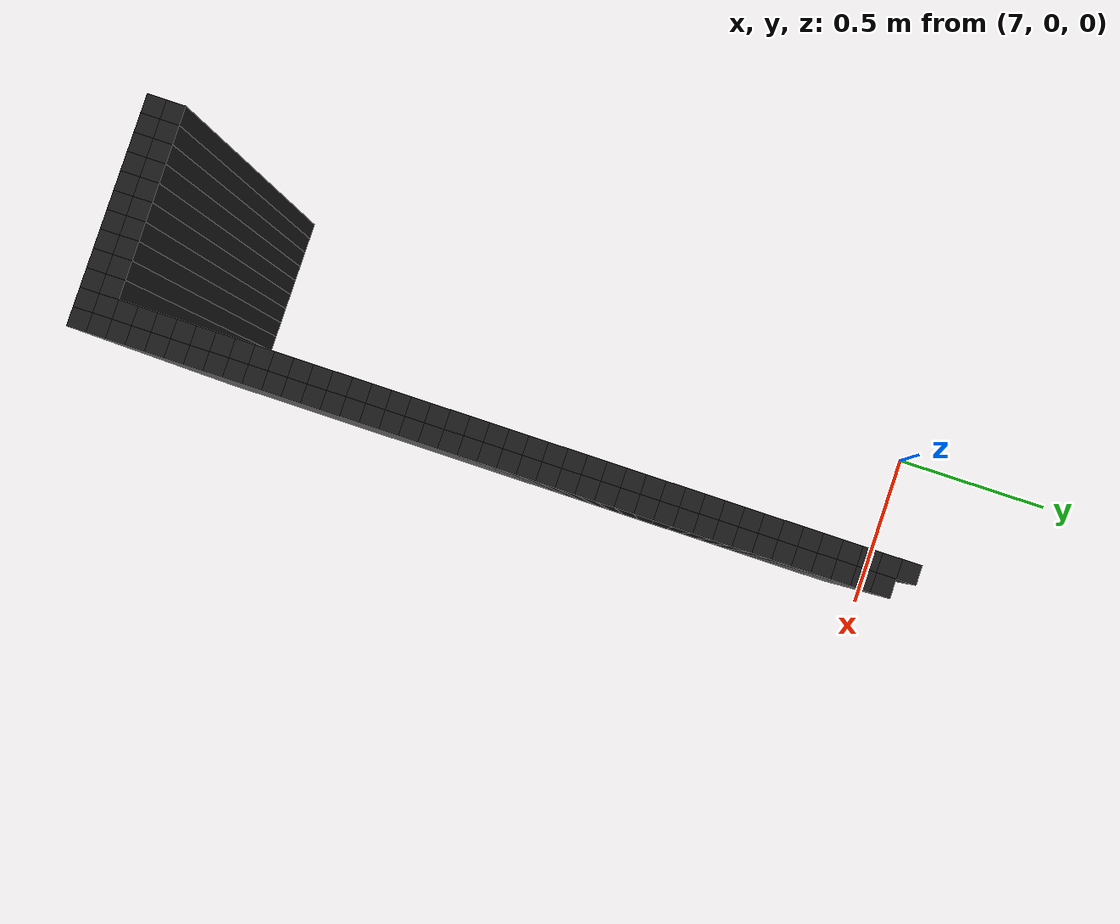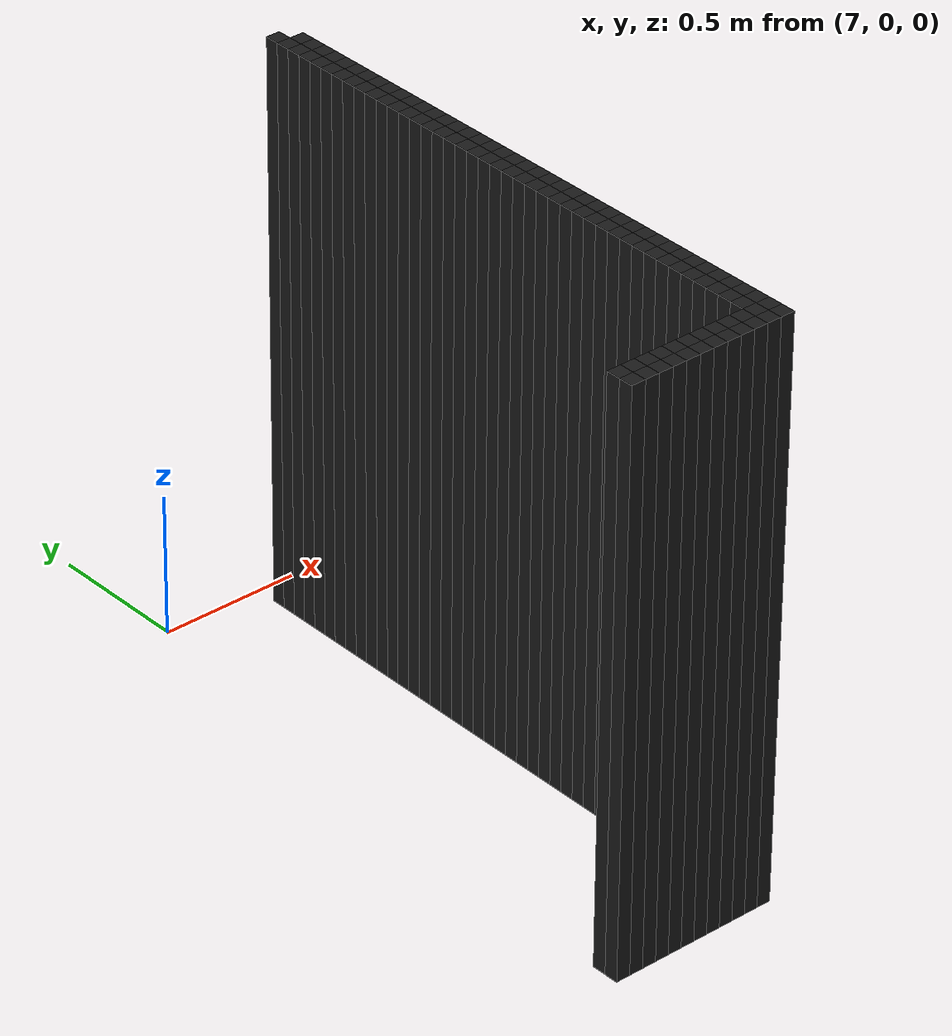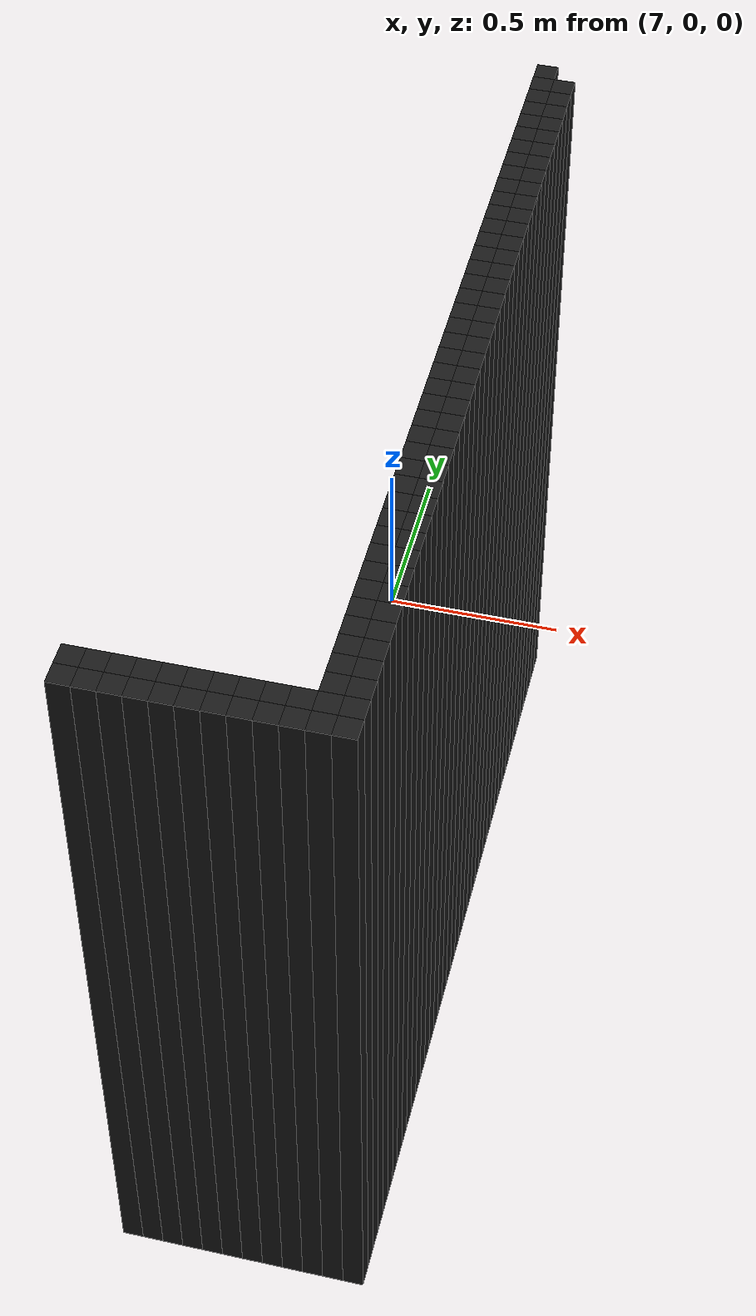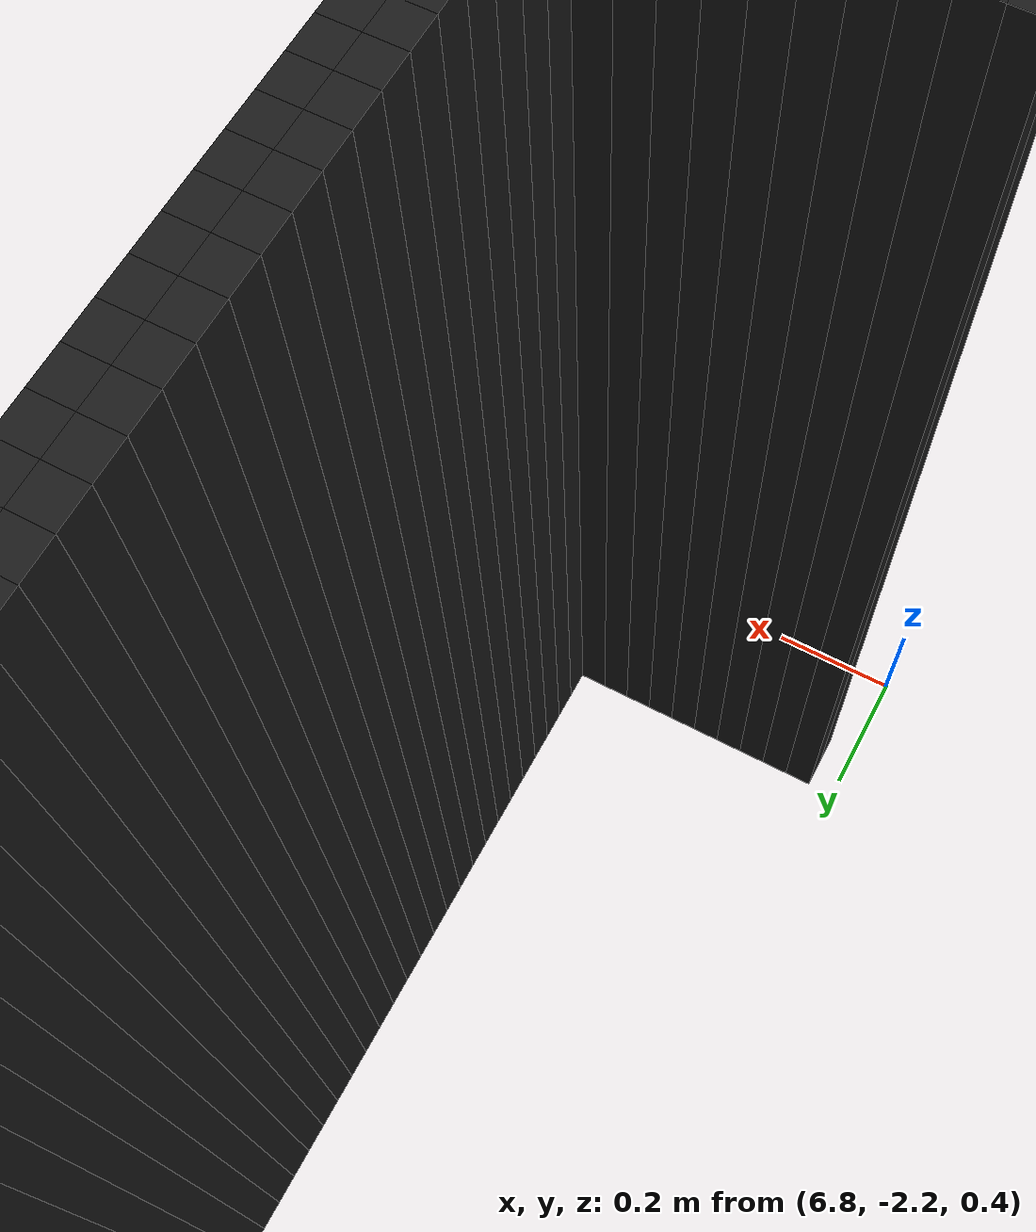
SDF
<sdf version="1.6">
 <model name="obstacle_238_169">
  <pose>7.390000000000001 -0.10000000000000009 1.0 0 0 0</pose>
  <static>true</static>
  <link name="box_link">
   <collision name="box_collision"><geometry><box><size>0.05 0.05 2.0</size></box></geometry></collision>
   <visual name="box_visual">
    <geometry><box><size>0.05 0.05 2.0</size></box></geometry>
    <material><ambient>0 0 0 1</ambient><diffuse>0.1 0.1 0.1 1</diffuse></material>
   </visual>
  </link>
 </model>
 <model name="obstacle_238_170">
  <pose>7.390000000000001 -0.1499999999999999 1.0 0 0 0</pose>
  <static>true</static>
  <link name="box_link">
   <collision name="box_collision"><geometry><box><size>0.05 0.05 2.0</size></box></geometry></collision>
   <visual name="box_visual">
    <geometry><box><size>0.05 0.05 2.0</size></box></geometry>
    <material><ambient>0 0 0 1</ambient><diffuse>0.1 0.1 0.1 1</diffuse></material>
   </visual>
  </link>
 </model>
 <model name="obstacle_239_170">
  <pose>7.440000000000001 -0.1499999999999999 1.0 0 0 0</pose>
  <static>true</static>
  <link name="box_link">
   <collision name="box_collision"><geometry><box><size>0.05 0.05 2.0</size></box></geometry></collision>
   <visual name="box_visual">
    <geometry><box><size>0.05 0.05 2.0</size></box></geometry>
    <material><ambient>0 0 0 1</ambient><diffuse>0.1 0.1 0.1 1</diffuse></material>
   </visual>
  </link>
 </model>
 <model name="obstacle_238_171">
  <pose>7.390000000000001 -0.20000000000000018 1.0 0 0 0</pose>
  <static>true</static>
  <link name="box_link">
   <collision name="box_collision"><geometry><box><size>0.05 0.05 2.0</size></box></geometry></collision>
   <visual name="box_visual">
    <geometry><box><size>0.05 0.05 2.0</size></box></geometry>
    <material><ambient>0 0 0 1</ambient><diffuse>0.1 0.1 0.1 1</diffuse></material>
   </visual>
  </link>
 </model>
 <model name="obstacle_239_171">
  <pose>7.440000000000001 -0.20000000000000018 1.0 0 0 0</pose>
  <static>true</static>
  <link name="box_link">
   <collision name="box_collision"><geometry><box><size>0.05 0.05 2.0</size></box></geometry></collision>
   <visual name="box_visual">
    <geometry><box><size>0.05 0.05 2.0</size></box></geometry>
    <material><ambient>0 0 0 1</ambient><diffuse>0.1 0.1 0.1 1</diffuse></material>
   </visual>
  </link>
 </model>
 <model name="obstacle_238_172">
  <pose>7.390000000000001 -0.25 1.0 0 0 0</pose>
  <static>true</static>
  <link name="box_link">
   <collision name="box_collision"><geometry><box><size>0.05 0.05 2.0</size></box></geometry></collision>
   <visual name="box_visual">
    <geometry><box><size>0.05 0.05 2.0</size></box></geometry>
    <material><ambient>0 0 0 1</ambient><diffuse>0.1 0.1 0.1 1</diffuse></material>
   </visual>
  </link>
 </model>
 <model name="obstacle_239_172">
  <pose>7.440000000000001 -0.25 1.0 0 0 0</pose>
  <static>true</static>
  <link name="box_link">
   <collision name="box_collision"><geometry><box><size>0.05 0.05 2.0</size></box></geometry></collision>
   <visual name="box_visual">
    <geometry><box><size>0.05 0.05 2.0</size></box></geometry>
    <material><ambient>0 0 0 1</ambient><diffuse>0.1 0.1 0.1 1</diffuse></material>
   </visual>
  </link>
 </model>
 <model name="obstacle_238_173">
  <pose>7.390000000000001 -0.30000000000000004 1.0 0 0 0</pose>
  <static>true</static>
  <link name="box_link">
   <collision name="box_collision"><geometry><box><size>0.05 0.05 2.0</size></box></geometry></collision>
   <visual name="box_visual">
    <geometry><box><size>0.05 0.05 2.0</size></box></geometry>
    <material><ambient>0 0 0 1</ambient><diffuse>0.1 0.1 0.1 1</diffuse></material>
   </visual>
  </link>
 </model>
 <model name="obstacle_239_173">
  <pose>7.440000000000001 -0.30000000000000004 1.0 0 0 0</pose>
  <static>true</static>
  <link name="box_link">
   <collision name="box_collision"><geometry><box><size>0.05 0.05 2.0</size></box></geometry></collision>
   <visual name="box_visual">
    <geometry><box><size>0.05 0.05 2.0</size></box></geometry>
    <material><ambient>0 0 0 1</ambient><diffuse>0.1 0.1 0.1 1</diffuse></material>
   </visual>
  </link>
 </model>
 <model name="obstacle_238_174">
  <pose>7.390000000000001 -0.3500000000000001 1.0 0 0 0</pose>
  <static>true</static>
  <link name="box_link">
   <collision name="box_collision"><geometry><box><size>0.05 0.05 2.0</size></box></geometry></collision>
   <visual name="box_visual">
    <geometry><box><size>0.05 0.05 2.0</size></box></geometry>
    <material><ambient>0 0 0 1</ambient><diffuse>0.1 0.1 0.1 1</diffuse></material>
   </visual>
  </link>
 </model>
 <model name="obstacle_239_174">
  <pose>7.440000000000001 -0.3500000000000001 1.0 0 0 0</pose>
  <static>true</static>
  <link name="box_link">
   <collision name="box_collision"><geometry><box><size>0.05 0.05 2.0</size></box></geometry></collision>
   <visual name="box_visual">
    <geometry><box><size>0.05 0.05 2.0</size></box></geometry>
    <material><ambient>0 0 0 1</ambient><diffuse>0.1 0.1 0.1 1</diffuse></material>
   </visual>
  </link>
 </model>
 <model name="obstacle_238_175">
  <pose>7.390000000000001 -0.40000000000000013 1.0 0 0 0</pose>
  <static>true</static>
  <link name="box_link">
   <collision name="box_collision"><geometry><box><size>0.05 0.05 2.0</size></box></geometry></collision>
   <visual name="box_visual">
    <geometry><box><size>0.05 0.05 2.0</size></box></geometry>
    <material><ambient>0 0 0 1</ambient><diffuse>0.1 0.1 0.1 1</diffuse></material>
   </visual>
  </link>
 </model>
 <model name="obstacle_239_175">
  <pose>7.440000000000001 -0.40000000000000013 1.0 0 0 0</pose>
  <static>true</static>
  <link name="box_link">
   <collision name="box_collision"><geometry><box><size>0.05 0.05 2.0</size></box></geometry></collision>
   <visual name="box_visual">
    <geometry><box><size>0.05 0.05 2.0</size></box></geometry>
    <material><ambient>0 0 0 1</ambient><diffuse>0.1 0.1 0.1 1</diffuse></material>
   </visual>
  </link>
 </model>
 <model name="obstacle_238_176">
  <pose>7.390000000000001 -0.4500000000000002 1.0 0 0 0</pose>
  <static>true</static>
  <link name="box_link">
   <collision name="box_collision"><geometry><box><size>0.05 0.05 2.0</size></box></geometry></collision>
   <visual name="box_visual">
    <geometry><box><size>0.05 0.05 2.0</size></box></geometry>
    <material><ambient>0 0 0 1</ambient><diffuse>0.1 0.1 0.1 1</diffuse></material>
   </visual>
  </link>
 </model>
 <model name="obstacle_239_176">
  <pose>7.440000000000001 -0.4500000000000002 1.0 0 0 0</pose>
  <static>true</static>
  <link name="box_link">
   <collision name="box_collision"><geometry><box><size>0.05 0.05 2.0</size></box></geometry></collision>
   <visual name="box_visual">
    <geometry><box><size>0.05 0.05 2.0</size></box></geometry>
    <material><ambient>0 0 0 1</ambient><diffuse>0.1 0.1 0.1 1</diffuse></material>
   </visual>
  </link>
 </model>
 <model name="obstacle_238_177">
  <pose>7.390000000000001 -0.5 1.0 0 0 0</pose>
  <static>true</static>
  <link name="box_link">
   <collision name="box_collision"><geometry><box><size>0.05 0.05 2.0</size></box></geometry></collision>
   <visual name="box_visual">
    <geometry><box><size>0.05 0.05 2.0</size></box></geometry>
    <material><ambient>0 0 0 1</ambient><diffuse>0.1 0.1 0.1 1</diffuse></material>
   </visual>
  </link>
 </model>
 <model name="obstacle_239_177">
  <pose>7.440000000000001 -0.5 1.0 0 0 0</pose>
  <static>true</static>
  <link name="box_link">
   <collision name="box_collision"><geometry><box><size>0.05 0.05 2.0</size></box></geometry></collision>
   <visual name="box_visual">
    <geometry><box><size>0.05 0.05 2.0</size></box></geometry>
    <material><ambient>0 0 0 1</ambient><diffuse>0.1 0.1 0.1 1</diffuse></material>
   </visual>
  </link>
 </model>
 <model name="obstacle_238_178">
  <pose>7.390000000000001 -0.55 1.0 0 0 0</pose>
  <static>true</static>
  <link name="box_link">
   <collision name="box_collision"><geometry><box><size>0.05 0.05 2.0</size></box></geometry></collision>
   <visual name="box_visual">
    <geometry><box><size>0.05 0.05 2.0</size></box></geometry>
    <material><ambient>0 0 0 1</ambient><diffuse>0.1 0.1 0.1 1</diffuse></material>
   </visual>
  </link>
 </model>
 <model name="obstacle_239_178">
  <pose>7.440000000000001 -0.55 1.0 0 0 0</pose>
  <static>true</static>
  <link name="box_link">
   <collision name="box_collision"><geometry><box><size>0.05 0.05 2.0</size></box></geometry></collision>
   <visual name="box_visual">
    <geometry><box><size>0.05 0.05 2.0</size></box></geometry>
    <material><ambient>0 0 0 1</ambient><diffuse>0.1 0.1 0.1 1</diffuse></material>
   </visual>
  </link>
 </model>
 <model name="obstacle_238_179">
  <pose>7.390000000000001 -0.6000000000000001 1.0 0 0 0</pose>
  <static>true</static>
  <link name="box_link">
   <collision name="box_collision"><geometry><box><size>0.05 0.05 2.0</size></box></geometry></collision>
   <visual name="box_visual">
    <geometry><box><size>0.05 0.05 2.0</size></box></geometry>
    <material><ambient>0 0 0 1</ambient><diffuse>0.1 0.1 0.1 1</diffuse></material>
   </visual>
  </link>
 </model>
 <model name="obstacle_239_179">
  <pose>7.440000000000001 -0.6000000000000001 1.0 0 0 0</pose>
  <static>true</static>
  <link name="box_link">
   <collision name="box_collision"><geometry><box><size>0.05 0.05 2.0</size></box></geometry></collision>
   <visual name="box_visual">
    <geometry><box><size>0.05 0.05 2.0</size></box></geometry>
    <material><ambient>0 0 0 1</ambient><diffuse>0.1 0.1 0.1 1</diffuse></material>
   </visual>
  </link>
 </model>
 <model name="obstacle_238_180">
  <pose>7.390000000000001 -0.6500000000000001 1.0 0 0 0</pose>
  <static>true</static>
  <link name="box_link">
   <collision name="box_collision"><geometry><box><size>0.05 0.05 2.0</size></box></geometry></collision>
   <visual name="box_visual">
    <geometry><box><size>0.05 0.05 2.0</size></box></geometry>
    <material><ambient>0 0 0 1</ambient><diffuse>0.1 0.1 0.1 1</diffuse></material>
   </visual>
  </link>
 </model>
 <model name="obstacle_239_180">
  <pose>7.440000000000001 -0.6500000000000001 1.0 0 0 0</pose>
  <static>true</static>
  <link name="box_link">
   <collision name="box_collision"><geometry><box><size>0.05 0.05 2.0</size></box></geometry></collision>
   <visual name="box_visual">
    <geometry><box><size>0.05 0.05 2.0</size></box></geometry>
    <material><ambient>0 0 0 1</ambient><diffuse>0.1 0.1 0.1 1</diffuse></material>
   </visual>
  </link>
 </model>
 <model name="obstacle_238_181">
  <pose>7.390000000000001 -0.7000000000000002 1.0 0 0 0</pose>
  <static>true</static>
  <link name="box_link">
   <collision name="box_collision"><geometry><box><size>0.05 0.05 2.0</size></box></geometry></collision>
   <visual name="box_visual">
    <geometry><box><size>0.05 0.05 2.0</size></box></geometry>
    <material><ambient>0 0 0 1</ambient><diffuse>0.1 0.1 0.1 1</diffuse></material>
   </visual>
  </link>
 </model>
 <model name="obstacle_239_181">
  <pose>7.440000000000001 -0.7000000000000002 1.0 0 0 0</pose>
  <static>true</static>
  <link name="box_link">
   <collision name="box_collision"><geometry><box><size>0.05 0.05 2.0</size></box></geometry></collision>
   <visual name="box_visual">
    <geometry><box><size>0.05 0.05 2.0</size></box></geometry>
    <material><ambient>0 0 0 1</ambient><diffuse>0.1 0.1 0.1 1</diffuse></material>
   </visual>
  </link>
 </model>
 <model name="obstacle_238_182">
  <pose>7.390000000000001 -0.75 1.0 0 0 0</pose>
  <static>true</static>
  <link name="box_link">
   <collision name="box_collision"><geometry><box><size>0.05 0.05 2.0</size></box></geometry></collision>
   <visual name="box_visual">
    <geometry><box><size>0.05 0.05 2.0</size></box></geometry>
    <material><ambient>0 0 0 1</ambient><diffuse>0.1 0.1 0.1 1</diffuse></material>
   </visual>
  </link>
 </model>
 <model name="obstacle_239_182">
  <pose>7.440000000000001 -0.75 1.0 0 0 0</pose>
  <static>true</static>
  <link name="box_link">
   <collision name="box_collision"><geometry><box><size>0.05 0.05 2.0</size></box></geometry></collision>
   <visual name="box_visual">
    <geometry><box><size>0.05 0.05 2.0</size></box></geometry>
    <material><ambient>0 0 0 1</ambient><diffuse>0.1 0.1 0.1 1</diffuse></material>
   </visual>
  </link>
 </model>
 <model name="obstacle_238_183">
  <pose>7.390000000000001 -0.8 1.0 0 0 0</pose>
  <static>true</static>
  <link name="box_link">
   <collision name="box_collision"><geometry><box><size>0.05 0.05 2.0</size></box></geometry></collision>
   <visual name="box_visual">
    <geometry><box><size>0.05 0.05 2.0</size></box></geometry>
    <material><ambient>0 0 0 1</ambient><diffuse>0.1 0.1 0.1 1</diffuse></material>
   </visual>
  </link>
 </model>
 <model name="obstacle_239_183">
  <pose>7.440000000000001 -0.8 1.0 0 0 0</pose>
  <static>true</static>
  <link name="box_link">
   <collision name="box_collision"><geometry><box><size>0.05 0.05 2.0</size></box></geometry></collision>
   <visual name="box_visual">
    <geometry><box><size>0.05 0.05 2.0</size></box></geometry>
    <material><ambient>0 0 0 1</ambient><diffuse>0.1 0.1 0.1 1</diffuse></material>
   </visual>
  </link>
 </model>
 <model name="obstacle_238_184">
  <pose>7.390000000000001 -0.8500000000000001 1.0 0 0 0</pose>
  <static>true</static>
  <link name="box_link">
   <collision name="box_collision"><geometry><box><size>0.05 0.05 2.0</size></box></geometry></collision>
   <visual name="box_visual">
    <geometry><box><size>0.05 0.05 2.0</size></box></geometry>
    <material><ambient>0 0 0 1</ambient><diffuse>0.1 0.1 0.1 1</diffuse></material>
   </visual>
  </link>
 </model>
 <model name="obstacle_239_184">
  <pose>7.440000000000001 -0.8500000000000001 1.0 0 0 0</pose>
  <static>true</static>
  <link name="box_link">
   <collision name="box_collision"><geometry><box><size>0.05 0.05 2.0</size></box></geometry></collision>
   <visual name="box_visual">
    <geometry><box><size>0.05 0.05 2.0</size></box></geometry>
    <material><ambient>0 0 0 1</ambient><diffuse>0.1 0.1 0.1 1</diffuse></material>
   </visual>
  </link>
 </model>
 <model name="obstacle_238_185">
  <pose>7.390000000000001 -0.9000000000000001 1.0 0 0 0</pose>
  <static>true</static>
  <link name="box_link">
   <collision name="box_collision"><geometry><box><size>0.05 0.05 2.0</size></box></geometry></collision>
   <visual name="box_visual">
    <geometry><box><size>0.05 0.05 2.0</size></box></geometry>
    <material><ambient>0 0 0 1</ambient><diffuse>0.1 0.1 0.1 1</diffuse></material>
   </visual>
  </link>
 </model>
 <model name="obstacle_239_185">
  <pose>7.440000000000001 -0.9000000000000001 1.0 0 0 0</pose>
  <static>true</static>
  <link name="box_link">
   <collision name="box_collision"><geometry><box><size>0.05 0.05 2.0</size></box></geometry></collision>
   <visual name="box_visual">
    <geometry><box><size>0.05 0.05 2.0</size></box></geometry>
    <material><ambient>0 0 0 1</ambient><diffuse>0.1 0.1 0.1 1</diffuse></material>
   </visual>
  </link>
 </model>
 <model name="obstacle_238_186">
  <pose>7.390000000000001 -0.9500000000000002 1.0 0 0 0</pose>
  <static>true</static>
  <link name="box_link">
   <collision name="box_collision"><geometry><box><size>0.05 0.05 2.0</size></box></geometry></collision>
   <visual name="box_visual">
    <geometry><box><size>0.05 0.05 2.0</size></box></geometry>
    <material><ambient>0 0 0 1</ambient><diffuse>0.1 0.1 0.1 1</diffuse></material>
   </visual>
  </link>
 </model>
 <model name="obstacle_239_186">
  <pose>7.440000000000001 -0.9500000000000002 1.0 0 0 0</pose>
  <static>true</static>
  <link name="box_link">
   <collision name="box_collision"><geometry><box><size>0.05 0.05 2.0</size></box></geometry></collision>
   <visual name="box_visual">
    <geometry><box><size>0.05 0.05 2.0</size></box></geometry>
    <material><ambient>0 0 0 1</ambient><diffuse>0.1 0.1 0.1 1</diffuse></material>
   </visual>
  </link>
 </model>
 <model name="obstacle_238_187">
  <pose>7.390000000000001 -1.0 1.0 0 0 0</pose>
  <static>true</static>
  <link name="box_link">
   <collision name="box_collision"><geometry><box><size>0.05 0.05 2.0</size></box></geometry></collision>
   <visual name="box_visual">
    <geometry><box><size>0.05 0.05 2.0</size></box></geometry>
    <material><ambient>0 0 0 1</ambient><diffuse>0.1 0.1 0.1 1</diffuse></material>
   </visual>
  </link>
 </model>
 <model name="obstacle_239_187">
  <pose>7.440000000000001 -1.0 1.0 0 0 0</pose>
  <static>true</static>
  <link name="box_link">
   <collision name="box_collision"><geometry><box><size>0.05 0.05 2.0</size></box></geometry></collision>
   <visual name="box_visual">
    <geometry><box><size>0.05 0.05 2.0</size></box></geometry>
    <material><ambient>0 0 0 1</ambient><diffuse>0.1 0.1 0.1 1</diffuse></material>
   </visual>
  </link>
 </model>
 <model name="obstacle_238_188">
  <pose>7.390000000000001 -1.05 1.0 0 0 0</pose>
  <static>true</static>
  <link name="box_link">
   <collision name="box_collision"><geometry><box><size>0.05 0.05 2.0</size></box></geometry></collision>
   <visual name="box_visual">
    <geometry><box><size>0.05 0.05 2.0</size></box></geometry>
    <material><ambient>0 0 0 1</ambient><diffuse>0.1 0.1 0.1 1</diffuse></material>
   </visual>
  </link>
 </model>
 <model name="obstacle_239_188">
  <pose>7.440000000000001 -1.05 1.0 0 0 0</pose>
  <static>true</static>
  <link name="box_link">
   <collision name="box_collision"><geometry><box><size>0.05 0.05 2.0</size></box></geometry></collision>
   <visual name="box_visual">
    <geometry><box><size>0.05 0.05 2.0</size></box></geometry>
    <material><ambient>0 0 0 1</ambient><diffuse>0.1 0.1 0.1 1</diffuse></material>
   </visual>
  </link>
 </model>
 <model name="obstacle_238_189">
  <pose>7.390000000000001 -1.1 1.0 0 0 0</pose>
  <static>true</static>
  <link name="box_link">
   <collision name="box_collision"><geometry><box><size>0.05 0.05 2.0</size></box></geometry></collision>
   <visual name="box_visual">
    <geometry><box><size>0.05 0.05 2.0</size></box></geometry>
    <material><ambient>0 0 0 1</ambient><diffuse>0.1 0.1 0.1 1</diffuse></material>
   </visual>
  </link>
 </model>
 <model name="obstacle_239_189">
  <pose>7.440000000000001 -1.1 1.0 0 0 0</pose>
  <static>true</static>
  <link name="box_link">
   <collision name="box_collision"><geometry><box><size>0.05 0.05 2.0</size></box></geometry></collision>
   <visual name="box_visual">
    <geometry><box><size>0.05 0.05 2.0</size></box></geometry>
    <material><ambient>0 0 0 1</ambient><diffuse>0.1 0.1 0.1 1</diffuse></material>
   </visual>
  </link>
 </model>
 <model name="obstacle_238_190">
  <pose>7.390000000000001 -1.1500000000000001 1.0 0 0 0</pose>
  <static>true</static>
  <link name="box_link">
   <collision name="box_collision"><geometry><box><size>0.05 0.05 2.0</size></box></geometry></collision>
   <visual name="box_visual">
    <geometry><box><size>0.05 0.05 2.0</size></box></geometry>
    <material><ambient>0 0 0 1</ambient><diffuse>0.1 0.1 0.1 1</diffuse></material>
   </visual>
  </link>
 </model>
 <model name="obstacle_239_190">
  <pose>7.440000000000001 -1.1500000000000001 1.0 0 0 0</pose>
  <static>true</static>
  <link name="box_link">
   <collision name="box_collision"><geometry><box><size>0.05 0.05 2.0</size></box></geometry></collision>
   <visual name="box_visual">
    <geometry><box><size>0.05 0.05 2.0</size></box></geometry>
    <material><ambient>0 0 0 1</ambient><diffuse>0.1 0.1 0.1 1</diffuse></material>
   </visual>
  </link>
 </model>
 <model name="obstacle_238_191">
  <pose>7.390000000000001 -1.2000000000000002 1.0 0 0 0</pose>
  <static>true</static>
  <link name="box_link">
   <collision name="box_collision"><geometry><box><size>0.05 0.05 2.0</size></box></geometry></collision>
   <visual name="box_visual">
    <geometry><box><size>0.05 0.05 2.0</size></box></geometry>
    <material><ambient>0 0 0 1</ambient><diffuse>0.1 0.1 0.1 1</diffuse></material>
   </visual>
  </link>
 </model>
 <model name="obstacle_239_191">
  <pose>7.440000000000001 -1.2000000000000002 1.0 0 0 0</pose>
  <static>true</static>
  <link name="box_link">
   <collision name="box_collision"><geometry><box><size>0.05 0.05 2.0</size></box></geometry></collision>
   <visual name="box_visual">
    <geometry><box><size>0.05 0.05 2.0</size></box></geometry>
    <material><ambient>0 0 0 1</ambient><diffuse>0.1 0.1 0.1 1</diffuse></material>
   </visual>
  </link>
 </model>
 <model name="obstacle_238_192">
  <pose>7.390000000000001 -1.25 1.0 0 0 0</pose>
  <static>true</static>
  <link name="box_link">
   <collision name="box_collision"><geometry><box><size>0.05 0.05 2.0</size></box></geometry></collision>
   <visual name="box_visual">
    <geometry><box><size>0.05 0.05 2.0</size></box></geometry>
    <material><ambient>0 0 0 1</ambient><diffuse>0.1 0.1 0.1 1</diffuse></material>
   </visual>
  </link>
 </model>
 <model name="obstacle_239_192">
  <pose>7.440000000000001 -1.25 1.0 0 0 0</pose>
  <static>true</static>
  <link name="box_link">
   <collision name="box_collision"><geometry><box><size>0.05 0.05 2.0</size></box></geometry></collision>
   <visual name="box_visual">
    <geometry><box><size>0.05 0.05 2.0</size></box></geometry>
    <material><ambient>0 0 0 1</ambient><diffuse>0.1 0.1 0.1 1</diffuse></material>
   </visual>
  </link>
 </model>
 <model name="obstacle_238_193">
  <pose>7.390000000000001 -1.3000000000000003 1.0 0 0 0</pose>
  <static>true</static>
  <link name="box_link">
   <collision name="box_collision"><geometry><box><size>0.05 0.05 2.0</size></box></geometry></collision>
   <visual name="box_visual">
    <geometry><box><size>0.05 0.05 2.0</size></box></geometry>
    <material><ambient>0 0 0 1</ambient><diffuse>0.1 0.1 0.1 1</diffuse></material>
   </visual>
  </link>
 </model>
 <model name="obstacle_239_193">
  <pose>7.440000000000001 -1.3000000000000003 1.0 0 0 0</pose>
  <static>true</static>
  <link name="box_link">
   <collision name="box_collision"><geometry><box><size>0.05 0.05 2.0</size></box></geometry></collision>
   <visual name="box_visual">
    <geometry><box><size>0.05 0.05 2.0</size></box></geometry>
    <material><ambient>0 0 0 1</ambient><diffuse>0.1 0.1 0.1 1</diffuse></material>
   </visual>
  </link>
 </model>
 <model name="obstacle_238_194">
  <pose>7.390000000000001 -1.35 1.0 0 0 0</pose>
  <static>true</static>
  <link name="box_link">
   <collision name="box_collision"><geometry><box><size>0.05 0.05 2.0</size></box></geometry></collision>
   <visual name="box_visual">
    <geometry><box><size>0.05 0.05 2.0</size></box></geometry>
    <material><ambient>0 0 0 1</ambient><diffuse>0.1 0.1 0.1 1</diffuse></material>
   </visual>
  </link>
 </model>
 <model name="obstacle_239_194">
  <pose>7.440000000000001 -1.35 1.0 0 0 0</pose>
  <static>true</static>
  <link name="box_link">
   <collision name="box_collision"><geometry><box><size>0.05 0.05 2.0</size></box></geometry></collision>
   <visual name="box_visual">
    <geometry><box><size>0.05 0.05 2.0</size></box></geometry>
    <material><ambient>0 0 0 1</ambient><diffuse>0.1 0.1 0.1 1</diffuse></material>
   </visual>
  </link>
 </model>
 <model name="obstacle_238_195">
  <pose>7.390000000000001 -1.4000000000000001 1.0 0 0 0</pose>
  <static>true</static>
  <link name="box_link">
   <collision name="box_collision"><geometry><box><size>0.05 0.05 2.0</size></box></geometry></collision>
   <visual name="box_visual">
    <geometry><box><size>0.05 0.05 2.0</size></box></geometry>
    <material><ambient>0 0 0 1</ambient><diffuse>0.1 0.1 0.1 1</diffuse></material>
   </visual>
  </link>
 </model>
 <model name="obstacle_239_195">
  <pose>7.440000000000001 -1.4000000000000001 1.0 0 0 0</pose>
  <static>true</static>
  <link name="box_link">
   <collision name="box_collision"><geometry><box><size>0.05 0.05 2.0</size></box></geometry></collision>
   <visual name="box_visual">
    <geometry><box><size>0.05 0.05 2.0</size></box></geometry>
    <material><ambient>0 0 0 1</ambient><diffuse>0.1 0.1 0.1 1</diffuse></material>
   </visual>
  </link>
 </model>
 <model name="obstacle_238_196">
  <pose>7.390000000000001 -1.4500000000000002 1.0 0 0 0</pose>
  <static>true</static>
  <link name="box_link">
   <collision name="box_collision"><geometry><box><size>0.05 0.05 2.0</size></box></geometry></collision>
   <visual name="box_visual">
    <geometry><box><size>0.05 0.05 2.0</size></box></geometry>
    <material><ambient>0 0 0 1</ambient><diffuse>0.1 0.1 0.1 1</diffuse></material>
   </visual>
  </link>
 </model>
 <model name="obstacle_239_196">
  <pose>7.440000000000001 -1.4500000000000002 1.0 0 0 0</pose>
  <static>true</static>
  <link name="box_link">
   <collision name="box_collision"><geometry><box><size>0.05 0.05 2.0</size></box></geometry></collision>
   <visual name="box_visual">
    <geometry><box><size>0.05 0.05 2.0</size></box></geometry>
    <material><ambient>0 0 0 1</ambient><diffuse>0.1 0.1 0.1 1</diffuse></material>
   </visual>
  </link>
 </model>
 <model name="obstacle_238_197">
  <pose>7.390000000000001 -1.5 1.0 0 0 0</pose>
  <static>true</static>
  <link name="box_link">
   <collision name="box_collision"><geometry><box><size>0.05 0.05 2.0</size></box></geometry></collision>
   <visual name="box_visual">
    <geometry><box><size>0.05 0.05 2.0</size></box></geometry>
    <material><ambient>0 0 0 1</ambient><diffuse>0.1 0.1 0.1 1</diffuse></material>
   </visual>
  </link>
 </model>
 <model name="obstacle_239_197">
  <pose>7.440000000000001 -1.5 1.0 0 0 0</pose>
  <static>true</static>
  <link name="box_link">
   <collision name="box_collision"><geometry><box><size>0.05 0.05 2.0</size></box></geometry></collision>
   <visual name="box_visual">
    <geometry><box><size>0.05 0.05 2.0</size></box></geometry>
    <material><ambient>0 0 0 1</ambient><diffuse>0.1 0.1 0.1 1</diffuse></material>
   </visual>
  </link>
 </model>
 <model name="obstacle_238_198">
  <pose>7.390000000000001 -1.5500000000000003 1.0 0 0 0</pose>
  <static>true</static>
  <link name="box_link">
   <collision name="box_collision"><geometry><box><size>0.05 0.05 2.0</size></box></geometry></collision>
   <visual name="box_visual">
    <geometry><box><size>0.05 0.05 2.0</size></box></geometry>
    <material><ambient>0 0 0 1</ambient><diffuse>0.1 0.1 0.1 1</diffuse></material>
   </visual>
  </link>
 </model>
 <model name="obstacle_239_198">
  <pose>7.440000000000001 -1.5500000000000003 1.0 0 0 0</pose>
  <static>true</static>
  <link name="box_link">
   <collision name="box_collision"><geometry><box><size>0.05 0.05 2.0</size></box></geometry></collision>
   <visual name="box_visual">
    <geometry><box><size>0.05 0.05 2.0</size></box></geometry>
    <material><ambient>0 0 0 1</ambient><diffuse>0.1 0.1 0.1 1</diffuse></material>
   </visual>
  </link>
 </model>
 <model name="obstacle_238_199">
  <pose>7.390000000000001 -1.6 1.0 0 0 0</pose>
  <static>true</static>
  <link name="box_link">
   <collision name="box_collision"><geometry><box><size>0.05 0.05 2.0</size></box></geometry></collision>
   <visual name="box_visual">
    <geometry><box><size>0.05 0.05 2.0</size></box></geometry>
    <material><ambient>0 0 0 1</ambient><diffuse>0.1 0.1 0.1 1</diffuse></material>
   </visual>
  </link>
 </model>
 <model name="obstacle_239_199">
  <pose>7.440000000000001 -1.6 1.0 0 0 0</pose>
  <static>true</static>
  <link name="box_link">
   <collision name="box_collision"><geometry><box><size>0.05 0.05 2.0</size></box></geometry></collision>
   <visual name="box_visual">
    <geometry><box><size>0.05 0.05 2.0</size></box></geometry>
    <material><ambient>0 0 0 1</ambient><diffuse>0.1 0.1 0.1 1</diffuse></material>
   </visual>
  </link>
 </model>
 <model name="obstacle_238_200">
  <pose>7.390000000000001 -1.6500000000000001 1.0 0 0 0</pose>
  <static>true</static>
  <link name="box_link">
   <collision name="box_collision"><geometry><box><size>0.05 0.05 2.0</size></box></geometry></collision>
   <visual name="box_visual">
    <geometry><box><size>0.05 0.05 2.0</size></box></geometry>
    <material><ambient>0 0 0 1</ambient><diffuse>0.1 0.1 0.1 1</diffuse></material>
   </visual>
  </link>
 </model>
 <model name="obstacle_239_200">
  <pose>7.440000000000001 -1.6500000000000001 1.0 0 0 0</pose>
  <static>true</static>
  <link name="box_link">
   <collision name="box_collision"><geometry><box><size>0.05 0.05 2.0</size></box></geometry></collision>
   <visual name="box_visual">
    <geometry><box><size>0.05 0.05 2.0</size></box></geometry>
    <material><ambient>0 0 0 1</ambient><diffuse>0.1 0.1 0.1 1</diffuse></material>
   </visual>
  </link>
 </model>
 <model name="obstacle_238_201">
  <pose>7.390000000000001 -1.7000000000000002 1.0 0 0 0</pose>
  <static>true</static>
  <link name="box_link">
   <collision name="box_collision"><geometry><box><size>0.05 0.05 2.0</size></box></geometry></collision>
   <visual name="box_visual">
    <geometry><box><size>0.05 0.05 2.0</size></box></geometry>
    <material><ambient>0 0 0 1</ambient><diffuse>0.1 0.1 0.1 1</diffuse></material>
   </visual>
  </link>
 </model>
 <model name="obstacle_239_201">
  <pose>7.440000000000001 -1.7000000000000002 1.0 0 0 0</pose>
  <static>true</static>
  <link name="box_link">
   <collision name="box_collision"><geometry><box><size>0.05 0.05 2.0</size></box></geometry></collision>
   <visual name="box_visual">
    <geometry><box><size>0.05 0.05 2.0</size></box></geometry>
    <material><ambient>0 0 0 1</ambient><diffuse>0.1 0.1 0.1 1</diffuse></material>
   </visual>
  </link>
 </model>
 <model name="obstacle_238_202">
  <pose>7.390000000000001 -1.7500000000000002 1.0 0 0 0</pose>
  <static>true</static>
  <link name="box_link">
   <collision name="box_collision"><geometry><box><size>0.05 0.05 2.0</size></box></geometry></collision>
   <visual name="box_visual">
    <geometry><box><size>0.05 0.05 2.0</size></box></geometry>
    <material><ambient>0 0 0 1</ambient><diffuse>0.1 0.1 0.1 1</diffuse></material>
   </visual>
  </link>
 </model>
 <model name="obstacle_239_202">
  <pose>7.440000000000001 -1.7500000000000002 1.0 0 0 0</pose>
  <static>true</static>
  <link name="box_link">
   <collision name="box_collision"><geometry><box><size>0.05 0.05 2.0</size></box></geometry></collision>
   <visual name="box_visual">
    <geometry><box><size>0.05 0.05 2.0</size></box></geometry>
    <material><ambient>0 0 0 1</ambient><diffuse>0.1 0.1 0.1 1</diffuse></material>
   </visual>
  </link>
 </model>
 <model name="obstacle_238_203">
  <pose>7.390000000000001 -1.8000000000000003 1.0 0 0 0</pose>
  <static>true</static>
  <link name="box_link">
   <collision name="box_collision"><geometry><box><size>0.05 0.05 2.0</size></box></geometry></collision>
   <visual name="box_visual">
    <geometry><box><size>0.05 0.05 2.0</size></box></geometry>
    <material><ambient>0 0 0 1</ambient><diffuse>0.1 0.1 0.1 1</diffuse></material>
   </visual>
  </link>
 </model>
 <model name="obstacle_239_203">
  <pose>7.440000000000001 -1.8000000000000003 1.0 0 0 0</pose>
  <static>true</static>
  <link name="box_link">
   <collision name="box_collision"><geometry><box><size>0.05 0.05 2.0</size></box></geometry></collision>
   <visual name="box_visual">
    <geometry><box><size>0.05 0.05 2.0</size></box></geometry>
    <material><ambient>0 0 0 1</ambient><diffuse>0.1 0.1 0.1 1</diffuse></material>
   </visual>
  </link>
 </model>
 <model name="obstacle_238_204">
  <pose>7.390000000000001 -1.85 1.0 0 0 0</pose>
  <static>true</static>
  <link name="box_link">
   <collision name="box_collision"><geometry><box><size>0.05 0.05 2.0</size></box></geometry></collision>
   <visual name="box_visual">
    <geometry><box><size>0.05 0.05 2.0</size></box></geometry>
    <material><ambient>0 0 0 1</ambient><diffuse>0.1 0.1 0.1 1</diffuse></material>
   </visual>
  </link>
 </model>
 <model name="obstacle_239_204">
  <pose>7.440000000000001 -1.85 1.0 0 0 0</pose>
  <static>true</static>
  <link name="box_link">
   <collision name="box_collision"><geometry><box><size>0.05 0.05 2.0</size></box></geometry></collision>
   <visual name="box_visual">
    <geometry><box><size>0.05 0.05 2.0</size></box></geometry>
    <material><ambient>0 0 0 1</ambient><diffuse>0.1 0.1 0.1 1</diffuse></material>
   </visual>
  </link>
 </model>
 <model name="obstacle_238_205">
  <pose>7.390000000000001 -1.9000000000000001 1.0 0 0 0</pose>
  <static>true</static>
  <link name="box_link">
   <collision name="box_collision"><geometry><box><size>0.05 0.05 2.0</size></box></geometry></collision>
   <visual name="box_visual">
    <geometry><box><size>0.05 0.05 2.0</size></box></geometry>
    <material><ambient>0 0 0 1</ambient><diffuse>0.1 0.1 0.1 1</diffuse></material>
   </visual>
  </link>
 </model>
 <model name="obstacle_239_205">
  <pose>7.440000000000001 -1.9000000000000001 1.0 0 0 0</pose>
  <static>true</static>
  <link name="box_link">
   <collision name="box_collision"><geometry><box><size>0.05 0.05 2.0</size></box></geometry></collision>
   <visual name="box_visual">
    <geometry><box><size>0.05 0.05 2.0</size></box></geometry>
    <material><ambient>0 0 0 1</ambient><diffuse>0.1 0.1 0.1 1</diffuse></material>
   </visual>
  </link>
 </model>
 <model name="obstacle_238_206">
  <pose>7.390000000000001 -1.9500000000000002 1.0 0 0 0</pose>
  <static>true</static>
  <link name="box_link">
   <collision name="box_collision"><geometry><box><size>0.05 0.05 2.0</size></box></geometry></collision>
   <visual name="box_visual">
    <geometry><box><size>0.05 0.05 2.0</size></box></geometry>
    <material><ambient>0 0 0 1</ambient><diffuse>0.1 0.1 0.1 1</diffuse></material>
   </visual>
  </link>
 </model>
 <model name="obstacle_239_206">
  <pose>7.440000000000001 -1.9500000000000002 1.0 0 0 0</pose>
  <static>true</static>
  <link name="box_link">
   <collision name="box_collision"><geometry><box><size>0.05 0.05 2.0</size></box></geometry></collision>
   <visual name="box_visual">
    <geometry><box><size>0.05 0.05 2.0</size></box></geometry>
    <material><ambient>0 0 0 1</ambient><diffuse>0.1 0.1 0.1 1</diffuse></material>
   </visual>
  </link>
 </model>
 <model name="obstacle_238_207">
  <pose>7.390000000000001 -2.0 1.0 0 0 0</pose>
  <static>true</static>
  <link name="box_link">
   <collision name="box_collision"><geometry><box><size>0.05 0.05 2.0</size></box></geometry></collision>
   <visual name="box_visual">
    <geometry><box><size>0.05 0.05 2.0</size></box></geometry>
    <material><ambient>0 0 0 1</ambient><diffuse>0.1 0.1 0.1 1</diffuse></material>
   </visual>
  </link>
 </model>
 <model name="obstacle_239_207">
  <pose>7.440000000000001 -2.0 1.0 0 0 0</pose>
  <static>true</static>
  <link name="box_link">
   <collision name="box_collision"><geometry><box><size>0.05 0.05 2.0</size></box></geometry></collision>
   <visual name="box_visual">
    <geometry><box><size>0.05 0.05 2.0</size></box></geometry>
    <material><ambient>0 0 0 1</ambient><diffuse>0.1 0.1 0.1 1</diffuse></material>
   </visual>
  </link>
 </model>
 <model name="obstacle_238_208">
  <pose>7.390000000000001 -2.0500000000000003 1.0 0 0 0</pose>
  <static>true</static>
  <link name="box_link">
   <collision name="box_collision"><geometry><box><size>0.05 0.05 2.0</size></box></geometry></collision>
   <visual name="box_visual">
    <geometry><box><size>0.05 0.05 2.0</size></box></geometry>
    <material><ambient>0 0 0 1</ambient><diffuse>0.1 0.1 0.1 1</diffuse></material>
   </visual>
  </link>
 </model>
 <model name="obstacle_239_208">
  <pose>7.440000000000001 -2.0500000000000003 1.0 0 0 0</pose>
  <static>true</static>
  <link name="box_link">
   <collision name="box_collision"><geometry><box><size>0.05 0.05 2.0</size></box></geometry></collision>
   <visual name="box_visual">
    <geometry><box><size>0.05 0.05 2.0</size></box></geometry>
    <material><ambient>0 0 0 1</ambient><diffuse>0.1 0.1 0.1 1</diffuse></material>
   </visual>
  </link>
 </model>
 <model name="obstacle_238_209">
  <pose>7.390000000000001 -2.1 1.0 0 0 0</pose>
  <static>true</static>
  <link name="box_link">
   <collision name="box_collision"><geometry><box><size>0.05 0.05 2.0</size></box></geometry></collision>
   <visual name="box_visual">
    <geometry><box><size>0.05 0.05 2.0</size></box></geometry>
    <material><ambient>0 0 0 1</ambient><diffuse>0.1 0.1 0.1 1</diffuse></material>
   </visual>
  </link>
 </model>
 <model name="obstacle_239_209">
  <pose>7.440000000000001 -2.1 1.0 0 0 0</pose>
  <static>true</static>
  <link name="box_link">
   <collision name="box_collision"><geometry><box><size>0.05 0.05 2.0</size></box></geometry></collision>
   <visual name="box_visual">
    <geometry><box><size>0.05 0.05 2.0</size></box></geometry>
    <material><ambient>0 0 0 1</ambient><diffuse>0.1 0.1 0.1 1</diffuse></material>
   </visual>
  </link>
 </model>
 <model name="obstacle_228_210">
  <pose>6.890000000000001 -2.1500000000000004 1.0 0 0 0</pose>
  <static>true</static>
  <link name="box_link">
   <collision name="box_collision"><geometry><box><size>0.05 0.05 2.0</size></box></geometry></collision>
   <visual name="box_visual">
    <geometry><box><size>0.05 0.05 2.0</size></box></geometry>
    <material><ambient>0 0 0 1</ambient><diffuse>0.1 0.1 0.1 1</diffuse></material>
   </visual>
  </link>
 </model>
 <model name="obstacle_229_210">
  <pose>6.940000000000001 -2.1500000000000004 1.0 0 0 0</pose>
  <static>true</static>
  <link name="box_link">
   <collision name="box_collision"><geometry><box><size>0.05 0.05 2.0</size></box></geometry></collision>
   <visual name="box_visual">
    <geometry><box><size>0.05 0.05 2.0</size></box></geometry>
    <material><ambient>0 0 0 1</ambient><diffuse>0.1 0.1 0.1 1</diffuse></material>
   </visual>
  </link>
 </model>
 <model name="obstacle_230_210">
  <pose>6.99 -2.1500000000000004 1.0 0 0 0</pose>
  <static>true</static>
  <link name="box_link">
   <collision name="box_collision"><geometry><box><size>0.05 0.05 2.0</size></box></geometry></collision>
   <visual name="box_visual">
    <geometry><box><size>0.05 0.05 2.0</size></box></geometry>
    <material><ambient>0 0 0 1</ambient><diffuse>0.1 0.1 0.1 1</diffuse></material>
   </visual>
  </link>
 </model>
 <model name="obstacle_231_210">
  <pose>7.040000000000001 -2.1500000000000004 1.0 0 0 0</pose>
  <static>true</static>
  <link name="box_link">
   <collision name="box_collision"><geometry><box><size>0.05 0.05 2.0</size></box></geometry></collision>
   <visual name="box_visual">
    <geometry><box><size>0.05 0.05 2.0</size></box></geometry>
    <material><ambient>0 0 0 1</ambient><diffuse>0.1 0.1 0.1 1</diffuse></material>
   </visual>
  </link>
 </model>
 <model name="obstacle_232_210">
  <pose>7.090000000000002 -2.1500000000000004 1.0 0 0 0</pose>
  <static>true</static>
  <link name="box_link">
   <collision name="box_collision"><geometry><box><size>0.05 0.05 2.0</size></box></geometry></collision>
   <visual name="box_visual">
    <geometry><box><size>0.05 0.05 2.0</size></box></geometry>
    <material><ambient>0 0 0 1</ambient><diffuse>0.1 0.1 0.1 1</diffuse></material>
   </visual>
  </link>
 </model>
 <model name="obstacle_233_210">
  <pose>7.140000000000001 -2.1500000000000004 1.0 0 0 0</pose>
  <static>true</static>
  <link name="box_link">
   <collision name="box_collision"><geometry><box><size>0.05 0.05 2.0</size></box></geometry></collision>
   <visual name="box_visual">
    <geometry><box><size>0.05 0.05 2.0</size></box></geometry>
    <material><ambient>0 0 0 1</ambient><diffuse>0.1 0.1 0.1 1</diffuse></material>
   </visual>
  </link>
 </model>
 <model name="obstacle_234_210">
  <pose>7.190000000000001 -2.1500000000000004 1.0 0 0 0</pose>
  <static>true</static>
  <link name="box_link">
   <collision name="box_collision"><geometry><box><size>0.05 0.05 2.0</size></box></geometry></collision>
   <visual name="box_visual">
    <geometry><box><size>0.05 0.05 2.0</size></box></geometry>
    <material><ambient>0 0 0 1</ambient><diffuse>0.1 0.1 0.1 1</diffuse></material>
   </visual>
  </link>
 </model>
 <model name="obstacle_235_210">
  <pose>7.24 -2.1500000000000004 1.0 0 0 0</pose>
  <static>true</static>
  <link name="box_link">
   <collision name="box_collision"><geometry><box><size>0.05 0.05 2.0</size></box></geometry></collision>
   <visual name="box_visual">
    <geometry><box><size>0.05 0.05 2.0</size></box></geometry>
    <material><ambient>0 0 0 1</ambient><diffuse>0.1 0.1 0.1 1</diffuse></material>
   </visual>
  </link>
 </model>
 <model name="obstacle_236_210">
  <pose>7.290000000000001 -2.1500000000000004 1.0 0 0 0</pose>
  <static>true</static>
  <link name="box_link">
   <collision name="box_collision"><geometry><box><size>0.05 0.05 2.0</size></box></geometry></collision>
   <visual name="box_visual">
    <geometry><box><size>0.05 0.05 2.0</size></box></geometry>
    <material><ambient>0 0 0 1</ambient><diffuse>0.1 0.1 0.1 1</diffuse></material>
   </visual>
  </link>
 </model>
 <model name="obstacle_237_210">
  <pose>7.340000000000002 -2.1500000000000004 1.0 0 0 0</pose>
  <static>true</static>
  <link name="box_link">
   <collision name="box_collision"><geometry><box><size>0.05 0.05 2.0</size></box></geometry></collision>
   <visual name="box_visual">
    <geometry><box><size>0.05 0.05 2.0</size></box></geometry>
    <material><ambient>0 0 0 1</ambient><diffuse>0.1 0.1 0.1 1</diffuse></material>
   </visual>
  </link>
 </model>
 <model name="obstacle_238_210">
  <pose>7.390000000000001 -2.1500000000000004 1.0 0 0 0</pose>
  <static>true</static>
  <link name="box_link">
   <collision name="box_collision"><geometry><box><size>0.05 0.05 2.0</size></box></geometry></collision>
   <visual name="box_visual">
    <geometry><box><size>0.05 0.05 2.0</size></box></geometry>
    <material><ambient>0 0 0 1</ambient><diffuse>0.1 0.1 0.1 1</diffuse></material>
   </visual>
  </link>
 </model>
 <model name="obstacle_239_210">
  <pose>7.440000000000001 -2.1500000000000004 1.0 0 0 0</pose>
  <static>true</static>
  <link name="box_link">
   <collision name="box_collision"><geometry><box><size>0.05 0.05 2.0</size></box></geometry></collision>
   <visual name="box_visual">
    <geometry><box><size>0.05 0.05 2.0</size></box></geometry>
    <material><ambient>0 0 0 1</ambient><diffuse>0.1 0.1 0.1 1</diffuse></material>
   </visual>
  </link>
 </model>
 <model name="obstacle_228_211">
  <pose>6.890000000000001 -2.2 1.0 0 0 0</pose>
  <static>true</static>
  <link name="box_link">
   <collision name="box_collision"><geometry><box><size>0.05 0.05 2.0</size></box></geometry></collision>
   <visual name="box_visual">
    <geometry><box><size>0.05 0.05 2.0</size></box></geometry>
    <material><ambient>0 0 0 1</ambient><diffuse>0.1 0.1 0.1 1</diffuse></material>
   </visual>
  </link>
 </model>
 <model name="obstacle_229_211">
  <pose>6.940000000000001 -2.2 1.0 0 0 0</pose>
  <static>true</static>
  <link name="box_link">
   <collision name="box_collision"><geometry><box><size>0.05 0.05 2.0</size></box></geometry></collision>
   <visual name="box_visual">
    <geometry><box><size>0.05 0.05 2.0</size></box></geometry>
    <material><ambient>0 0 0 1</ambient><diffuse>0.1 0.1 0.1 1</diffuse></material>
   </visual>
  </link>
 </model>
 <model name="obstacle_230_211">
  <pose>6.99 -2.2 1.0 0 0 0</pose>
  <static>true</static>
  <link name="box_link">
   <collision name="box_collision"><geometry><box><size>0.05 0.05 2.0</size></box></geometry></collision>
   <visual name="box_visual">
    <geometry><box><size>0.05 0.05 2.0</size></box></geometry>
    <material><ambient>0 0 0 1</ambient><diffuse>0.1 0.1 0.1 1</diffuse></material>
   </visual>
  </link>
 </model>
 <model name="obstacle_231_211">
  <pose>7.040000000000001 -2.2 1.0 0 0 0</pose>
  <static>true</static>
  <link name="box_link">
   <collision name="box_collision"><geometry><box><size>0.05 0.05 2.0</size></box></geometry></collision>
   <visual name="box_visual">
    <geometry><box><size>0.05 0.05 2.0</size></box></geometry>
    <material><ambient>0 0 0 1</ambient><diffuse>0.1 0.1 0.1 1</diffuse></material>
   </visual>
  </link>
 </model>
 <model name="obstacle_232_211">
  <pose>7.090000000000002 -2.2 1.0 0 0 0</pose>
  <static>true</static>
  <link name="box_link">
   <collision name="box_collision"><geometry><box><size>0.05 0.05 2.0</size></box></geometry></collision>
   <visual name="box_visual">
    <geometry><box><size>0.05 0.05 2.0</size></box></geometry>
    <material><ambient>0 0 0 1</ambient><diffuse>0.1 0.1 0.1 1</diffuse></material>
   </visual>
  </link>
 </model>
 <model name="obstacle_233_211">
  <pose>7.140000000000001 -2.2 1.0 0 0 0</pose>
  <static>true</static>
  <link name="box_link">
   <collision name="box_collision"><geometry><box><size>0.05 0.05 2.0</size></box></geometry></collision>
   <visual name="box_visual">
    <geometry><box><size>0.05 0.05 2.0</size></box></geometry>
    <material><ambient>0 0 0 1</ambient><diffuse>0.1 0.1 0.1 1</diffuse></material>
   </visual>
  </link>
 </model>
 <model name="obstacle_234_211">
  <pose>7.190000000000001 -2.2 1.0 0 0 0</pose>
  <static>true</static>
  <link name="box_link">
   <collision name="box_collision"><geometry><box><size>0.05 0.05 2.0</size></box></geometry></collision>
   <visual name="box_visual">
    <geometry><box><size>0.05 0.05 2.0</size></box></geometry>
    <material><ambient>0 0 0 1</ambient><diffuse>0.1 0.1 0.1 1</diffuse></material>
   </visual>
  </link>
 </model>
 <model name="obstacle_235_211">
  <pose>7.24 -2.2 1.0 0 0 0</pose>
  <static>true</static>
  <link name="box_link">
   <collision name="box_collision"><geometry><box><size>0.05 0.05 2.0</size></box></geometry></collision>
   <visual name="box_visual">
    <geometry><box><size>0.05 0.05 2.0</size></box></geometry>
    <material><ambient>0 0 0 1</ambient><diffuse>0.1 0.1 0.1 1</diffuse></material>
   </visual>
  </link>
 </model>
 <model name="obstacle_236_211">
  <pose>7.290000000000001 -2.2 1.0 0 0 0</pose>
  <static>true</static>
  <link name="box_link">
   <collision name="box_collision"><geometry><box><size>0.05 0.05 2.0</size></box></geometry></collision>
   <visual name="box_visual">
    <geometry><box><size>0.05 0.05 2.0</size></box></geometry>
    <material><ambient>0 0 0 1</ambient><diffuse>0.1 0.1 0.1 1</diffuse></material>
   </visual>
  </link>
 </model>
 <model name="obstacle_237_211">
  <pose>7.340000000000002 -2.2 1.0 0 0 0</pose>
  <static>true</static>
  <link name="box_link">
   <collision name="box_collision"><geometry><box><size>0.05 0.05 2.0</size></box></geometry></collision>
   <visual name="box_visual">
    <geometry><box><size>0.05 0.05 2.0</size></box></geometry>
    <material><ambient>0 0 0 1</ambient><diffuse>0.1 0.1 0.1 1</diffuse></material>
   </visual>
  </link>
 </model>
 <model name="obstacle_238_211">
  <pose>7.390000000000001 -2.2 1.0 0 0 0</pose>
  <static>true</static>
  <link name="box_link">
   <collision name="box_collision"><geometry><box><size>0.05 0.05 2.0</size></box></geometry></collision>
   <visual name="box_visual">
    <geometry><box><size>0.05 0.05 2.0</size></box></geometry>
    <material><ambient>0 0 0 1</ambient><diffuse>0.1 0.1 0.1 1</diffuse></material>
   </visual>
  </link>
 </model>
 <model name="obstacle_239_211">
  <pose>7.440000000000001 -2.2 1.0 0 0 0</pose>
  <static>true</static>
  <link name="box_link">
   <collision name="box_collision"><geometry><box><size>0.05 0.05 2.0</size></box></geometry></collision>
   <visual name="box_visual">
    <geometry><box><size>0.05 0.05 2.0</size></box></geometry>
    <material><ambient>0 0 0 1</ambient><diffuse>0.1 0.1 0.1 1</diffuse></material>
   </visual>
  </link>
 </model>
</sdf>
